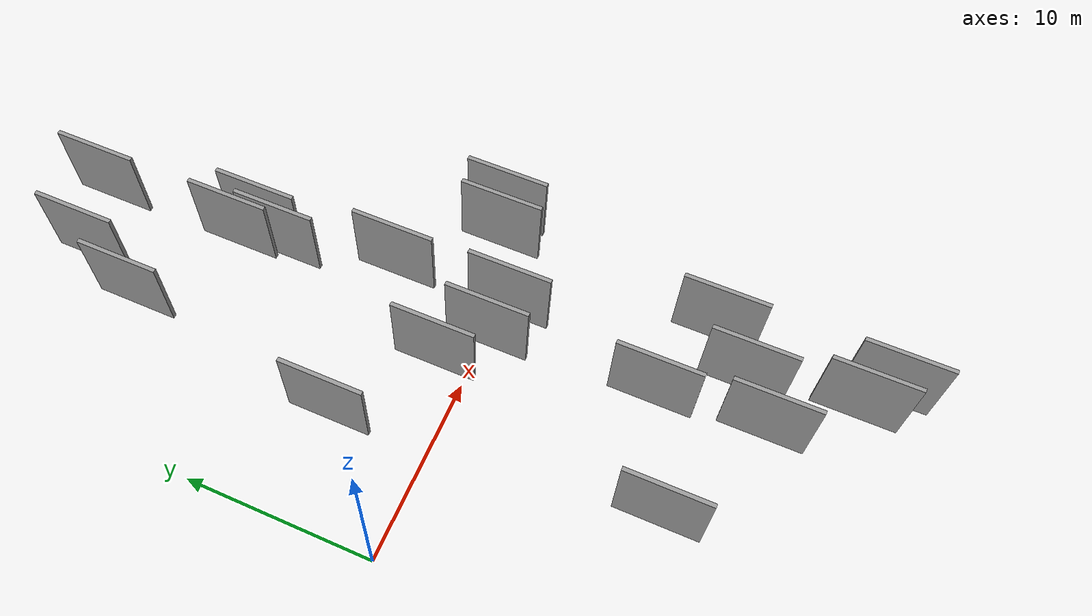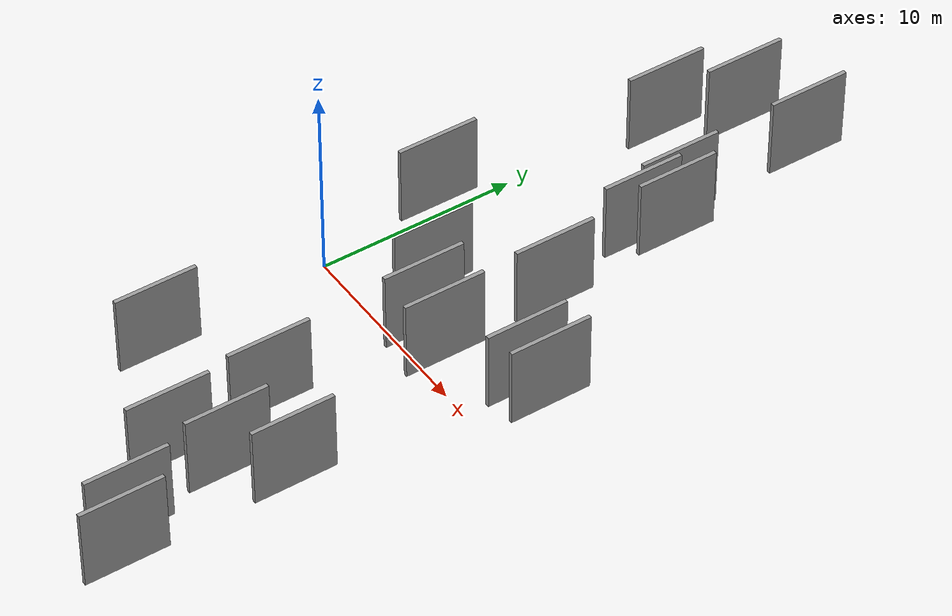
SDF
<sdf version="1.6">
 <world name="default">
  <scene>
   <sky><clouds><speed>12</speed></clouds></sky>
   <ambient>0.4 0.4 0.4 1</ambient>
   <background>0.7 0.7 0.7 1</background>
   <shadows>1</shadows>
  </scene>
  <gravity>0 0 -9.8066</gravity>
  <magnetic_field>6e-06 2.3e-05 -4.2e-05</magnetic_field>
  <physics default="0" name="default_physics" type="ode">
   <ode>
    <solver>
     <type>quick</type>
     <iters>10</iters>
     <sor>1.0</sor>
     <use_dynamic_moi_rescaling>0</use_dynamic_moi_rescaling>
    </solver>
    <constraints>
     <cfm>0</cfm>
     <erp>0.2</erp>
     <contact_max_correcting_vel>100</contact_max_correcting_vel>
     <contact_surface_layer>0.001</contact_surface_layer>
    </constraints>
   </ode>
   <max_step_size>0.004</max_step_size>
   <real_time_factor>1</real_time_factor>
   <real_time_update_rate>250</real_time_update_rate>
  </physics>
  <light name="sun" type="directional">
   <pose>0 0 10 0 0 0</pose>
   <diffuse>0.8 0.8 0.8 1</diffuse>
   <specular>0.2 0.2 0.2 1</specular>
   <attenuation>
    <range>1000</range>
    <constant>0.9</constant>
    <linear>0.01</linear>
    <quadratic>0.001</quadratic>
   </attenuation>
   <direction>-0.5 0.1 -0.9</direction>
  </light>
  <model name="grey_wall_1">
   <static>1</static>
   <pose>10.8889 -14.2298 5.0 0.000000 0.000000 1.570796</pose>
   <link name="link">
    <pose>0 0 2.00 0 0 0</pose>
    <collision name="collision"><geometry><box><size>4.00 0.2 4.00</size></box></geometry></collision>
    <visual name="visual">
     <cast_shadows>0</cast_shadows>
     <geometry><box><size>4.00 0.2 4.00</size></box></geometry>
     <material>
      <script>
       <uri>model://grey_wall/materials/scripts</uri>
       <uri>model://grey_wall/materials/textures</uri>
       <name>vrc/grey_wall</name>
      </script>
     </material>
    </visual>
   </link>
  </model>
  <model name="grey_wall_2">
   <static>1</static>
   <pose>14.9847 -18.7837 5.0 0.000000 0.000000 1.570796</pose>
   <link name="link">
    <pose>0 0 2.00 0 0 0</pose>
    <collision name="collision"><geometry><box><size>4.00 0.2 4.00</size></box></geometry></collision>
    <visual name="visual">
     <cast_shadows>0</cast_shadows>
     <geometry><box><size>4.00 0.2 4.00</size></box></geometry>
     <material>
      <script>
       <uri>model://grey_wall/materials/scripts</uri>
       <uri>model://grey_wall/materials/textures</uri>
       <name>vrc/grey_wall</name>
      </script>
     </material>
    </visual>
   </link>
  </model>
  <model name="grey_wall_3">
   <static>1</static>
   <pose>14.9045 -10.6880 5.0 0.000000 0.000000 1.570796</pose>
   <link name="link">
    <pose>0 0 2.00 0 0 0</pose>
    <collision name="collision"><geometry><box><size>4.00 0.2 4.00</size></box></geometry></collision>
    <visual name="visual">
     <cast_shadows>0</cast_shadows>
     <geometry><box><size>4.00 0.2 4.00</size></box></geometry>
     <material>
      <script>
       <uri>model://grey_wall/materials/scripts</uri>
       <uri>model://grey_wall/materials/textures</uri>
       <name>vrc/grey_wall</name>
      </script>
     </material>
    </visual>
   </link>
  </model>
  <model name="grey_wall_4">
   <static>1</static>
   <pose>13.5691 -17.7444 5.0 0.000000 0.000000 1.570796</pose>
   <link name="link">
    <pose>0 0 2.00 0 0 0</pose>
    <collision name="collision"><geometry><box><size>4.00 0.2 4.00</size></box></geometry></collision>
    <visual name="visual">
     <cast_shadows>0</cast_shadows>
     <geometry><box><size>4.00 0.2 4.00</size></box></geometry>
     <material>
      <script>
       <uri>model://grey_wall/materials/scripts</uri>
       <uri>model://grey_wall/materials/textures</uri>
       <name>vrc/grey_wall</name>
      </script>
     </material>
    </visual>
   </link>
  </model>
  <model name="grey_wall_5">
   <static>1</static>
   <pose>12.9070 -12.6352 5.0 0.000000 0.000000 1.570796</pose>
   <link name="link">
    <pose>0 0 2.00 0 0 0</pose>
    <collision name="collision"><geometry><box><size>4.00 0.2 4.00</size></box></geometry></collision>
    <visual name="visual">
     <cast_shadows>0</cast_shadows>
     <geometry><box><size>4.00 0.2 4.00</size></box></geometry>
     <material>
      <script>
       <uri>model://grey_wall/materials/scripts</uri>
       <uri>model://grey_wall/materials/textures</uri>
       <name>vrc/grey_wall</name>
      </script>
     </material>
    </visual>
   </link>
  </model>
  <model name="grey_wall_6">
   <static>1</static>
   <pose>16.9244 0.6680 5.0 0.000000 0.000000 1.570796</pose>
   <link name="link">
    <pose>0 0 2.00 0 0 0</pose>
    <collision name="collision"><geometry><box><size>4.00 0.2 4.00</size></box></geometry></collision>
    <visual name="visual">
     <cast_shadows>0</cast_shadows>
     <geometry><box><size>4.00 0.2 4.00</size></box></geometry>
     <material>
      <script>
       <uri>model://grey_wall/materials/scripts</uri>
       <uri>model://grey_wall/materials/textures</uri>
       <name>vrc/grey_wall</name>
      </script>
     </material>
    </visual>
   </link>
  </model>
  <model name="grey_wall_7">
   <static>1</static>
   <pose>10.5341 -9.1394 5.0 0.000000 0.000000 1.570796</pose>
   <link name="link">
    <pose>0 0 2.00 0 0 0</pose>
    <collision name="collision"><geometry><box><size>4.00 0.2 4.00</size></box></geometry></collision>
    <visual name="visual">
     <cast_shadows>0</cast_shadows>
     <geometry><box><size>4.00 0.2 4.00</size></box></geometry>
     <material>
      <script>
       <uri>model://grey_wall/materials/scripts</uri>
       <uri>model://grey_wall/materials/textures</uri>
       <name>vrc/grey_wall</name>
      </script>
     </material>
    </visual>
   </link>
  </model>
  <model name="grey_wall_8">
   <static>1</static>
   <pose>8.2956 0.4859 5.0 0.000000 0.000000 1.570796</pose>
   <link name="link">
    <pose>0 0 2.00 0 0 0</pose>
    <collision name="collision"><geometry><box><size>4.00 0.2 4.00</size></box></geometry></collision>
    <visual name="visual">
     <cast_shadows>0</cast_shadows>
     <geometry><box><size>4.00 0.2 4.00</size></box></geometry>
     <material>
      <script>
       <uri>model://grey_wall/materials/scripts</uri>
       <uri>model://grey_wall/materials/textures</uri>
       <name>vrc/grey_wall</name>
      </script>
     </material>
    </visual>
   </link>
  </model>
  <model name="grey_wall_9">
   <static>1</static>
   <pose>10.2159 -1.2427 5.0 0.000000 0.000000 1.570796</pose>
   <link name="link">
    <pose>0 0 2.00 0 0 0</pose>
    <collision name="collision"><geometry><box><size>4.00 0.2 4.00</size></box></geometry></collision>
    <visual name="visual">
     <cast_shadows>0</cast_shadows>
     <geometry><box><size>4.00 0.2 4.00</size></box></geometry>
     <material>
      <script>
       <uri>model://grey_wall/materials/scripts</uri>
       <uri>model://grey_wall/materials/textures</uri>
       <name>vrc/grey_wall</name>
      </script>
     </material>
    </visual>
   </link>
  </model>
  <model name="grey_wall_10">
   <static>1</static>
   <pose>5.1583 -11.3950 5.0 0.000000 0.000000 1.570796</pose>
   <link name="link">
    <pose>0 0 2.00 0 0 0</pose>
    <collision name="collision"><geometry><box><size>4.00 0.2 4.00</size></box></geometry></collision>
    <visual name="visual">
     <cast_shadows>0</cast_shadows>
     <geometry><box><size>4.00 0.2 4.00</size></box></geometry>
     <material>
      <script>
       <uri>model://grey_wall/materials/scripts</uri>
       <uri>model://grey_wall/materials/textures</uri>
       <name>vrc/grey_wall</name>
      </script>
     </material>
    </visual>
   </link>
  </model>
  <model name="grey_wall_11">
   <static>1</static>
   <pose>12.0324 4.2456 5.0 0.000000 0.000000 1.570796</pose>
   <link name="link">
    <pose>0 0 2.00 0 0 0</pose>
    <collision name="collision"><geometry><box><size>4.00 0.2 4.00</size></box></geometry></collision>
    <visual name="visual">
     <cast_shadows>0</cast_shadows>
     <geometry><box><size>4.00 0.2 4.00</size></box></geometry>
     <material>
      <script>
       <uri>model://grey_wall/materials/scripts</uri>
       <uri>model://grey_wall/materials/textures</uri>
       <name>vrc/grey_wall</name>
      </script>
     </material>
    </visual>
   </link>
  </model>
  <model name="grey_wall_12">
   <static>1</static>
   <pose>5.5528 14.7077 5.0 0.000000 0.000000 1.570796</pose>
   <link name="link">
    <pose>0 0 2.00 0 0 0</pose>
    <collision name="collision"><geometry><box><size>4.00 0.2 4.00</size></box></geometry></collision>
    <visual name="visual">
     <cast_shadows>0</cast_shadows>
     <geometry><box><size>4.00 0.2 4.00</size></box></geometry>
     <material>
      <script>
       <uri>model://grey_wall/materials/scripts</uri>
       <uri>model://grey_wall/materials/textures</uri>
       <name>vrc/grey_wall</name>
      </script>
     </material>
    </visual>
   </link>
  </model>
  <model name="grey_wall_13">
   <static>1</static>
   <pose>10.3881 18.9815 5.0 0.000000 0.000000 1.570796</pose>
   <link name="link">
    <pose>0 0 2.00 0 0 0</pose>
    <collision name="collision"><geometry><box><size>4.00 0.2 4.00</size></box></geometry></collision>
    <visual name="visual">
     <cast_shadows>0</cast_shadows>
     <geometry><box><size>4.00 0.2 4.00</size></box></geometry>
     <material>
      <script>
       <uri>model://grey_wall/materials/scripts</uri>
       <uri>model://grey_wall/materials/textures</uri>
       <name>vrc/grey_wall</name>
      </script>
     </material>
    </visual>
   </link>
  </model>
  <model name="grey_wall_14">
   <static>1</static>
   <pose>6.9968 17.9632 5.0 0.000000 0.000000 1.570796</pose>
   <link name="link">
    <pose>0 0 2.00 0 0 0</pose>
    <collision name="collision"><geometry><box><size>4.00 0.2 4.00</size></box></geometry></collision>
    <visual name="visual">
     <cast_shadows>0</cast_shadows>
     <geometry><box><size>4.00 0.2 4.00</size></box></geometry>
     <material>
      <script>
       <uri>model://grey_wall/materials/scripts</uri>
       <uri>model://grey_wall/materials/textures</uri>
       <name>vrc/grey_wall</name>
      </script>
     </material>
    </visual>
   </link>
  </model>
  <model name="grey_wall_15">
   <static>1</static>
   <pose>11.5065 11.0595 5.0 0.000000 0.000000 1.570796</pose>
   <link name="link">
    <pose>0 0 2.00 0 0 0</pose>
    <collision name="collision"><geometry><box><size>4.00 0.2 4.00</size></box></geometry></collision>
    <visual name="visual">
     <cast_shadows>0</cast_shadows>
     <geometry><box><size>4.00 0.2 4.00</size></box></geometry>
     <material>
      <script>
       <uri>model://grey_wall/materials/scripts</uri>
       <uri>model://grey_wall/materials/textures</uri>
       <name>vrc/grey_wall</name>
      </script>
     </material>
    </visual>
   </link>
  </model>
  <model name="grey_wall_16">
   <static>1</static>
   <pose>3.8887 3.6463 5.0 0.000000 0.000000 1.570796</pose>
   <link name="link">
    <pose>0 0 2.00 0 0 0</pose>
    <collision name="collision"><geometry><box><size>4.00 0.2 4.00</size></box></geometry></collision>
    <visual name="visual">
     <cast_shadows>0</cast_shadows>
     <geometry><box><size>4.00 0.2 4.00</size></box></geometry>
     <material>
      <script>
       <uri>model://grey_wall/materials/scripts</uri>
       <uri>model://grey_wall/materials/textures</uri>
       <name>vrc/grey_wall</name>
      </script>
     </material>
    </visual>
   </link>
  </model>
  <model name="grey_wall_17">
   <static>1</static>
   <pose>15.5966 0.3915 5.0 0.000000 0.000000 1.570796</pose>
   <link name="link">
    <pose>0 0 2.00 0 0 0</pose>
    <collision name="collision"><geometry><box><size>4.00 0.2 4.00</size></box></geometry></collision>
    <visual name="visual">
     <cast_shadows>0</cast_shadows>
     <geometry><box><size>4.00 0.2 4.00</size></box></geometry>
     <material>
      <script>
       <uri>model://grey_wall/materials/scripts</uri>
       <uri>model://grey_wall/materials/textures</uri>
       <name>vrc/grey_wall</name>
      </script>
     </material>
    </visual>
   </link>
  </model>
  <model name="grey_wall_18">
   <static>1</static>
   <pose>10.4597 11.9430 5.0 0.000000 0.000000 1.570796</pose>
   <link name="link">
    <pose>0 0 2.00 0 0 0</pose>
    <collision name="collision"><geometry><box><size>4.00 0.2 4.00</size></box></geometry></collision>
    <visual name="visual">
     <cast_shadows>0</cast_shadows>
     <geometry><box><size>4.00 0.2 4.00</size></box></geometry>
     <material>
      <script>
       <uri>model://grey_wall/materials/scripts</uri>
       <uri>model://grey_wall/materials/textures</uri>
       <name>vrc/grey_wall</name>
      </script>
     </material>
    </visual>
   </link>
  </model>
  <model name="grey_wall_19">
   <static>1</static>
   <pose>12.1713 -1.4777 5.0 0.000000 0.000000 1.570796</pose>
   <link name="link">
    <pose>0 0 2.00 0 0 0</pose>
    <collision name="collision"><geometry><box><size>4.00 0.2 4.00</size></box></geometry></collision>
    <visual name="visual">
     <cast_shadows>0</cast_shadows>
     <geometry><box><size>4.00 0.2 4.00</size></box></geometry>
     <material>
      <script>
       <uri>model://grey_wall/materials/scripts</uri>
       <uri>model://grey_wall/materials/textures</uri>
       <name>vrc/grey_wall</name>
      </script>
     </material>
    </visual>
   </link>
  </model>
  <model name="grey_wall_20">
   <static>1</static>
   <pose>10.8024 9.7213 5.0 0.000000 0.000000 1.570796</pose>
   <link name="link">
    <pose>0 0 2.00 0 0 0</pose>
    <collision name="collision"><geometry><box><size>4.00 0.2 4.00</size></box></geometry></collision>
    <visual name="visual">
     <cast_shadows>0</cast_shadows>
     <geometry><box><size>4.00 0.2 4.00</size></box></geometry>
     <material>
      <script>
       <uri>model://grey_wall/materials/scripts</uri>
       <uri>model://grey_wall/materials/textures</uri>
       <name>vrc/grey_wall</name>
      </script>
     </material>
    </visual>
   </link>
  </model>
 </world>
</sdf>
